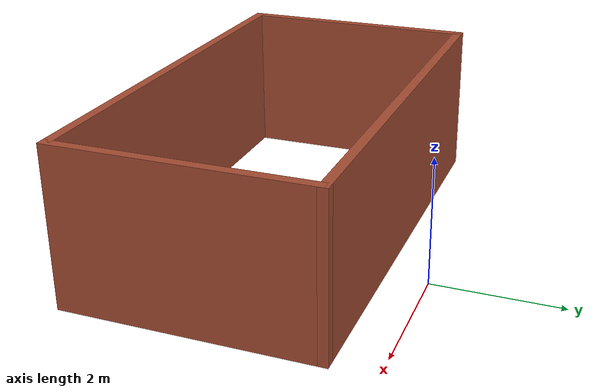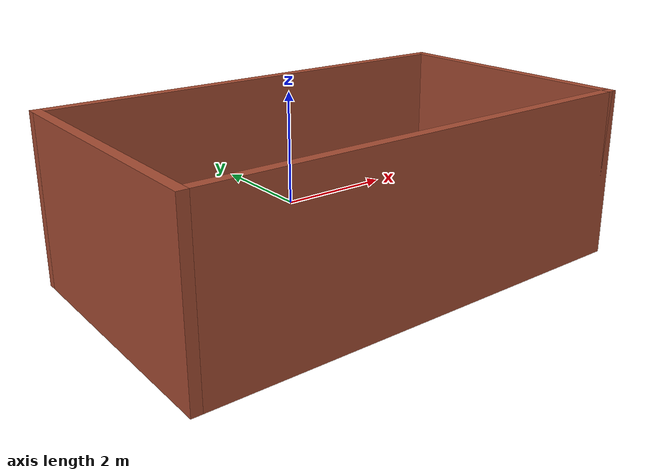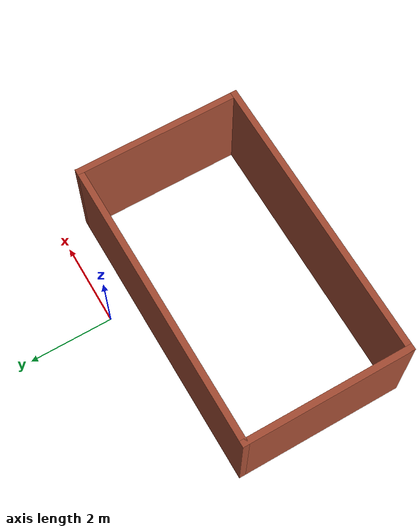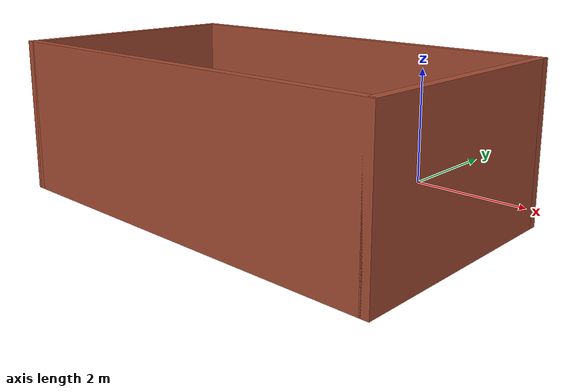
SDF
<?xml version='1.0'?>
<sdf version='1.6'>
  <model name='house'>
    <pose frame=''>-1.055 -2.655 0 0 -0 0</pose>
    <link name='Wall_0'>
      <collision name='Wall_0_Collision'>
        <geometry>
          <box>
            <size>4 0.15 2.5</size>
          </box>
        </geometry>
        <pose frame=''>0 0 1.25 0 -0 0</pose>
      </collision>
      <visual name='Wall_0_Visual'>
        <pose frame=''>0 0 1.25 0 -0 0</pose>
        <geometry>
          <box>
            <size>4 0.15 2.5</size>
          </box>
        </geometry>
        <material>
          <script>
            <uri>file://media/materials/scripts/gazebo.material</uri>
            <name>Gazebo/Bricks</name>
          </script>
          <ambient>1 1 1 1</ambient>
        </material>
        <meta>
          <layer>0</layer>
        </meta>
      </visual>
      <pose frame=''>-3.425 0 0 0 -0 -1.5708</pose>
    </link>
    <link name='Wall_1'>
      <collision name='Wall_1_Collision'>
        <geometry>
          <box>
            <size>7 0.15 2.5</size>
          </box>
        </geometry>
        <pose frame=''>0 0 1.25 0 -0 0</pose>
      </collision>
      <visual name='Wall_1_Visual'>
        <pose frame=''>0 0 1.25 0 -0 0</pose>
        <geometry>
          <box>
            <size>7 0.15 2.5</size>
          </box>
        </geometry>
        <material>
          <script>
            <uri>file://media/materials/scripts/gazebo.material</uri>
            <name>Gazebo/Bricks</name>
          </script>
          <ambient>1 1 1 1</ambient>
        </material>
        <meta>
          <layer>0</layer>
        </meta>
      </visual>
      <pose frame=''>0 -1.925 0 0 -0 0</pose>
    </link>
    <link name='Wall_2'>
      <collision name='Wall_2_Collision'>
        <geometry>
          <box>
            <size>4 0.15 2.5</size>
          </box>
        </geometry>
        <pose frame=''>0 0 1.25 0 -0 0</pose>
      </collision>
      <visual name='Wall_2_Visual'>
        <pose frame=''>0 0 1.25 0 -0 0</pose>
        <geometry>
          <box>
            <size>4 0.15 2.5</size>
          </box>
        </geometry>
        <material>
          <script>
            <uri>file://media/materials/scripts/gazebo.material</uri>
            <name>Gazebo/Bricks</name>
          </script>
          <ambient>1 1 1 1</ambient>
        </material>
        <meta>
          <layer>0</layer>
        </meta>
      </visual>
      <pose frame=''>3.425 0 0 0 -0 1.5708</pose>
    </link>
    <link name='Wall_3'>
      <collision name='Wall_3_Collision'>
        <geometry>
          <box>
            <size>7 0.15 2.5</size>
          </box>
        </geometry>
        <pose frame=''>0 0 1.25 0 -0 0</pose>
      </collision>
      <visual name='Wall_3_Visual'>
        <pose frame=''>0 0 1.25 0 -0 0</pose>
        <geometry>
          <box>
            <size>7 0.15 2.5</size>
          </box>
        </geometry>
        <material>
          <script>
            <uri>file://media/materials/scripts/gazebo.material</uri>
            <name>Gazebo/Bricks</name>
          </script>
          <ambient>1 1 1 1</ambient>
        </material>
        <meta>
          <layer>0</layer>
        </meta>
      </visual>
      <pose frame=''>0 1.925 0 0 -0 3.14159</pose>
    </link>
    <static>1</static>
  </model>
</sdf>
